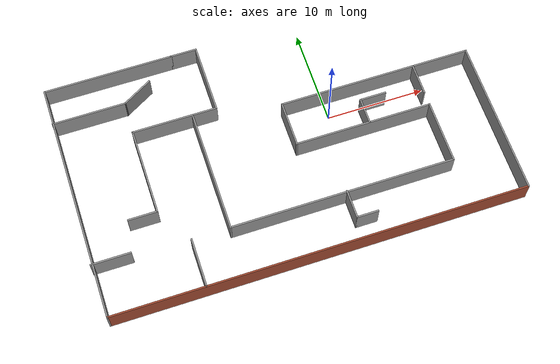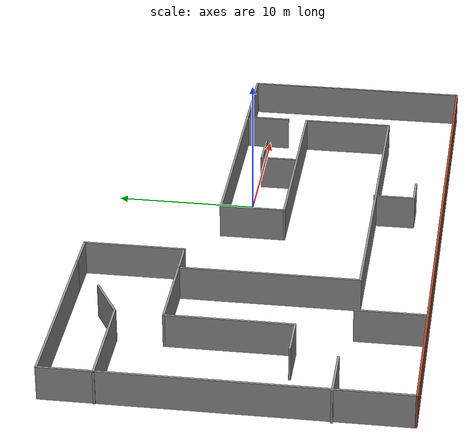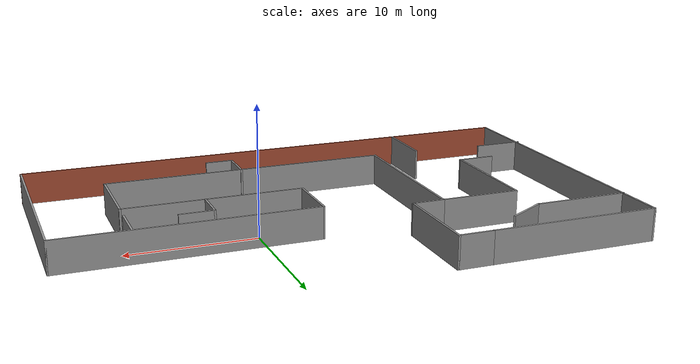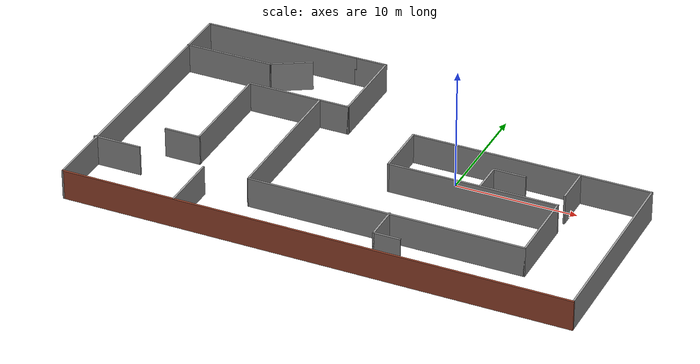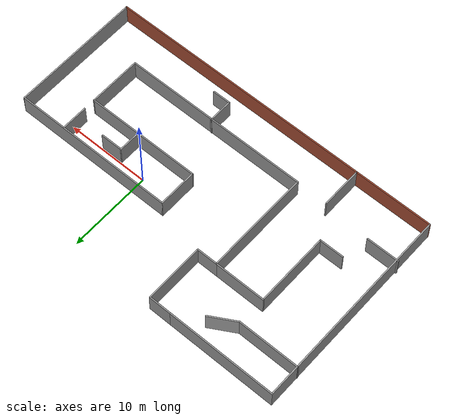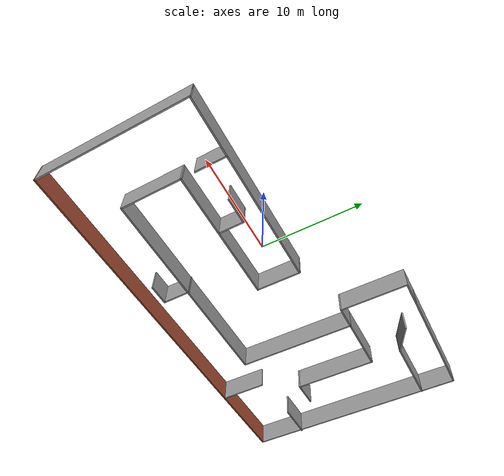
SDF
<?xml version='1.0'?>
<sdf version='1.6'>
  <model name='simple_world'>
    <pose frame=''>-5.64816 -1.81434 0 0 -0 0</pose>
    <link name='Wall_10'>
      <collision name='Wall_10_Collision'>
        <geometry>
          <box>
            <size>41.75 0.15 2.5</size>
          </box>
        </geometry>
        <pose frame=''>0 0 1.25 0 -0 0</pose>
      </collision>
      <visual name='Wall_10_Visual'>
        <pose frame=''>0 0 1.25 0 -0 0</pose>
        <geometry>
          <box>
            <size>41.75 0.15 2.5</size>
          </box>
        </geometry>
        <material>
          <script>
            <uri>file://media/materials/scripts/gazebo.material</uri>
            <name>Gazebo/Bricks</name>
          </script>
          <ambient>1 1 1 1</ambient>
        </material>
        <meta>
          <layer>0</layer>
        </meta>
      </visual>
      <pose frame=''>0.0862 -12.3 0 0 -0 3.14159</pose>
    </link>
    <link name='Wall_11'>
      <collision name='Wall_11_Collision'>
        <geometry>
          <box>
            <size>24.75 0.15 2.5</size>
          </box>
        </geometry>
        <pose frame=''>0 0 1.25 0 -0 0</pose>
      </collision>
      <visual name='Wall_11_Visual'>
        <pose frame=''>0 0 1.25 0 -0 0</pose>
        <geometry>
          <box>
            <size>24.75 0.15 2.5</size>
          </box>
        </geometry>
        <material>
          <script>
            <uri>file://media/materials/scripts/gazebo.material</uri>
            <name>Gazebo/Grey</name>
          </script>
          <ambient>1 1 1 1</ambient>
        </material>
        <meta>
          <layer>0</layer>
        </meta>
      </visual>
      <pose frame=''>-20.7138 -0 0 0 -0 1.5708</pose>
    </link>
    <link name='Wall_12'>
      <collision name='Wall_12_Collision'>
        <geometry>
          <box>
            <size>13.25 0.15 2.5</size>
          </box>
        </geometry>
        <pose frame=''>0 0 1.25 0 -0 0</pose>
      </collision>
      <visual name='Wall_12_Visual'>
        <pose frame=''>0 0 1.25 0 -0 0</pose>
        <geometry>
          <box>
            <size>13.25 0.15 2.5</size>
          </box>
        </geometry>
        <material>
          <script>
            <uri>file://media/materials/scripts/gazebo.material</uri>
            <name>Gazebo/Grey</name>
          </script>
          <ambient>1 1 1 1</ambient>
        </material>
        <meta>
          <layer>0</layer>
        </meta>
      </visual>
      <pose frame=''>-14.1638 12.3 0 0 -0 0</pose>
    </link>
    <link name='Wall_13'>
      <collision name='Wall_13_Collision'>
        <geometry>
          <box>
            <size>2.75 0.15 2.5</size>
          </box>
        </geometry>
        <pose frame=''>0 0 1.25 0 -0 0</pose>
      </collision>
      <visual name='Wall_13_Visual'>
        <pose frame=''>0 0 1.25 0 -0 0</pose>
        <geometry>
          <box>
            <size>2.75 0.15 2.5</size>
          </box>
        </geometry>
        <material>
          <script>
            <uri>file://media/materials/scripts/gazebo.material</uri>
            <name>Gazebo/Grey</name>
          </script>
          <ambient>1 1 1 1</ambient>
        </material>
        <meta>
          <layer>0</layer>
        </meta>
      </visual>
      <pose frame=''>-6.3138 12.3 0 0 -0 0</pose>
    </link>
    <link name='Wall_14'>
      <collision name='Wall_14_Collision'>
        <geometry>
          <box>
            <size>7.25 0.15 2.5</size>
          </box>
        </geometry>
        <pose frame=''>0 0 1.25 0 -0 0</pose>
      </collision>
      <visual name='Wall_14_Visual'>
        <pose frame=''>0 0 1.25 0 -0 0</pose>
        <geometry>
          <box>
            <size>7.25 0.15 2.5</size>
          </box>
        </geometry>
        <material>
          <script>
            <uri>file://media/materials/scripts/gazebo.material</uri>
            <name>Gazebo/Grey</name>
          </script>
          <ambient>1 1 1 1</ambient>
        </material>
        <meta>
          <layer>0</layer>
        </meta>
      </visual>
      <pose frame=''>-5.0138 8.75 0 0 -0 -1.5708</pose>
    </link>
    <link name='Wall_15'>
      <collision name='Wall_15_Collision'>
        <geometry>
          <box>
            <size>2.6 0.15 2.5</size>
          </box>
        </geometry>
        <pose frame=''>0 0 1.25 0 -0 0</pose>
      </collision>
      <visual name='Wall_15_Visual'>
        <pose frame=''>0 0 1.25 0 -0 0</pose>
        <geometry>
          <box>
            <size>2.6 0.15 2.5</size>
          </box>
        </geometry>
        <material>
          <script>
            <uri>file://media/materials/scripts/gazebo.material</uri>
            <name>Gazebo/Grey</name>
          </script>
          <ambient>1 1 1 1</ambient>
        </material>
        <meta>
          <layer>0</layer>
        </meta>
      </visual>
      <pose frame=''>-6.2388 5.2 0 0 -0 3.14159</pose>
    </link>
    <link name='Wall_18'>
      <collision name='Wall_18_Collision'>
        <geometry>
          <box>
            <size>2.75 0.15 2.5</size>
          </box>
        </geometry>
        <pose frame=''>0 0 1.25 0 -0 0</pose>
      </collision>
      <visual name='Wall_18_Visual'>
        <pose frame=''>0 0 1.25 0 -0 0</pose>
        <geometry>
          <box>
            <size>2.75 0.15 2.5</size>
          </box>
        </geometry>
        <material>
          <script>
            <uri>file://media/materials/scripts/gazebo.material</uri>
            <name>Gazebo/Grey</name>
          </script>
          <ambient>1 1 1 1</ambient>
        </material>
        <meta>
          <layer>0</layer>
        </meta>
      </visual>
      <pose frame=''>8.8363 0.274203 0 0 -0 1.5708</pose>
    </link>
    <link name='Wall_19'>
      <collision name='Wall_19_Collision'>
        <geometry>
          <box>
            <size>2.75 0.15 2.5</size>
          </box>
        </geometry>
        <pose frame=''>0 0 1.25 0 -0 0</pose>
      </collision>
      <visual name='Wall_19_Visual'>
        <pose frame=''>0 0 1.25 0 -0 0</pose>
        <geometry>
          <box>
            <size>2.75 0.15 2.5</size>
          </box>
        </geometry>
        <material>
          <script>
            <uri>file://media/materials/scripts/gazebo.material</uri>
            <name>Gazebo/Grey</name>
          </script>
          <ambient>1 1 1 1</ambient>
        </material>
        <meta>
          <layer>0</layer>
        </meta>
      </visual>
      <pose frame=''>10.1363 1.5742 0 0 -0 0</pose>
    </link>
    <link name='Wall_21'>
      <collision name='Wall_21_Collision'>
        <geometry>
          <box>
            <size>3.25 0.15 2.5</size>
          </box>
        </geometry>
        <pose frame=''>0 0 1.25 0 -0 0</pose>
      </collision>
      <visual name='Wall_21_Visual'>
        <pose frame=''>0 0 1.25 0 -0 0</pose>
        <geometry>
          <box>
            <size>3.25 0.15 2.5</size>
          </box>
        </geometry>
        <material>
          <script>
            <uri>file://media/materials/scripts/gazebo.material</uri>
            <name>Gazebo/Grey</name>
          </script>
          <ambient>1 1 1 1</ambient>
        </material>
        <meta>
          <layer>0</layer>
        </meta>
      </visual>
      <pose frame=''>15.1479 1.95641 0 0 -0 -1.5708</pose>
    </link>
    <link name='Wall_23'>
      <collision name='Wall_23_Collision'>
        <geometry>
          <box>
            <size>6.25 0.15 2.5</size>
          </box>
        </geometry>
        <pose frame=''>0 0 1.25 0 -0 0</pose>
      </collision>
      <visual name='Wall_23_Visual'>
        <pose frame=''>0 0 1.25 0 -0 0</pose>
        <geometry>
          <box>
            <size>6.25 0.15 2.5</size>
          </box>
        </geometry>
        <material>
          <script>
            <uri>file://media/materials/scripts/gazebo.material</uri>
            <name>Gazebo/Grey</name>
          </script>
          <ambient>1 1 1 1</ambient>
        </material>
        <meta>
          <layer>0</layer>
        </meta>
      </visual>
      <pose frame=''>-10.5138 5.2 0 0 -0 3.14159</pose>
    </link>
    <link name='Wall_24'>
      <collision name='Wall_24_Collision'>
        <geometry>
          <box>
            <size>9 0.15 2.5</size>
          </box>
        </geometry>
        <pose frame=''>0 0 1.25 0 -0 0</pose>
      </collision>
      <visual name='Wall_24_Visual'>
        <pose frame=''>0 0 1.25 0 -0 0</pose>
        <geometry>
          <box>
            <size>9 0.15 2.5</size>
          </box>
        </geometry>
        <material>
          <script>
            <uri>file://media/materials/scripts/gazebo.material</uri>
            <name>Gazebo/Grey</name>
          </script>
          <ambient>1 1 1 1</ambient>
        </material>
        <meta>
          <layer>0</layer>
        </meta>
      </visual>
      <pose frame=''>-13.5638 0.775 0 0 -0 -1.5708</pose>
    </link>
    <link name='Wall_25'>
      <collision name='Wall_25_Collision'>
        <geometry>
          <box>
            <size>3 0.15 2.5</size>
          </box>
        </geometry>
        <pose frame=''>0 0 1.25 0 -0 0</pose>
      </collision>
      <visual name='Wall_25_Visual'>
        <pose frame=''>0 0 1.25 0 -0 0</pose>
        <geometry>
          <box>
            <size>3 0.15 2.5</size>
          </box>
        </geometry>
        <material>
          <script>
            <uri>file://media/materials/scripts/gazebo.material</uri>
            <name>Gazebo/Grey</name>
          </script>
          <ambient>1 1 1 1</ambient>
        </material>
        <meta>
          <layer>0</layer>
        </meta>
      </visual>
      <pose frame=''>-14.9888 -3.65 0 0 -0 3.14159</pose>
    </link>
    <link name='Wall_27'>
      <collision name='Wall_27_Collision'>
        <geometry>
          <box>
            <size>3 0.15 2.5</size>
          </box>
        </geometry>
        <pose frame=''>0 0 1.25 0 -0 0</pose>
      </collision>
      <visual name='Wall_27_Visual'>
        <pose frame=''>0 0 1.25 0 -0 0</pose>
        <geometry>
          <box>
            <size>3 0.15 2.5</size>
          </box>
        </geometry>
        <material>
          <script>
            <uri>file://media/materials/scripts/gazebo.material</uri>
            <name>Gazebo/Grey</name>
          </script>
          <ambient>1 1 1 1</ambient>
        </material>
        <meta>
          <layer>0</layer>
        </meta>
      </visual>
      <pose frame=''>4.21717 -8.7552 0 0 -0 -1.5708</pose>
    </link>
    <link name='Wall_28'>
      <collision name='Wall_28_Collision'>
        <geometry>
          <box>
            <size>2.25 0.15 2.5</size>
          </box>
        </geometry>
        <pose frame=''>0 0 1.25 0 -0 0</pose>
      </collision>
      <visual name='Wall_28_Visual'>
        <pose frame=''>0 0 1.25 0 -0 0</pose>
        <geometry>
          <box>
            <size>2.25 0.15 2.5</size>
          </box>
        </geometry>
        <material>
          <script>
            <uri>file://media/materials/scripts/gazebo.material</uri>
            <name>Gazebo/Grey</name>
          </script>
          <ambient>1 1 1 1</ambient>
        </material>
        <meta>
          <layer>0</layer>
        </meta>
      </visual>
      <pose frame=''>5.26717 -10.1802 0 0 -0 0</pose>
    </link>
    <link name='Wall_3'>
      <collision name='Wall_3_Collision'>
        <geometry>
          <box>
            <size>12.75 0.15 2.5</size>
          </box>
        </geometry>
        <pose frame=''>0 0 1.25 0 -0 0</pose>
      </collision>
      <visual name='Wall_3_Visual'>
        <pose frame=''>0 0 1.25 0 -0 0</pose>
        <geometry>
          <box>
            <size>12.75 0.15 2.5</size>
          </box>
        </geometry>
        <material>
          <script>
            <uri>file://media/materials/scripts/gazebo.material</uri>
            <name>Gazebo/Grey</name>
          </script>
          <ambient>1 1 1 1</ambient>
        </material>
        <meta>
          <layer>0</layer>
        </meta>
      </visual>
      <pose frame=''>-7.4638 -1.1 0 0 -0 -1.5708</pose>
    </link>
    <link name='Wall_30'>
      <collision name='Wall_30_Collision'>
        <geometry>
          <box>
            <size>5 0.15 2.5</size>
          </box>
        </geometry>
        <pose frame=''>0 0 1.25 0 -0 0</pose>
      </collision>
      <visual name='Wall_30_Visual'>
        <pose frame=''>0 0 1.25 0 -0 0</pose>
        <geometry>
          <box>
            <size>5 0.15 2.5</size>
          </box>
        </geometry>
        <material>
          <script>
            <uri>file://media/materials/scripts/gazebo.material</uri>
            <name>Gazebo/Grey</name>
          </script>
          <ambient>1 1 1 1</ambient>
        </material>
        <meta>
          <layer>0</layer>
        </meta>
      </visual>
      <pose frame=''>-11.2879 -9.82742 0 0 -0 1.5708</pose>
    </link>
    <link name='Wall_32'>
      <collision name='Wall_32_Collision'>
        <geometry>
          <box>
            <size>4 0.15 2.5</size>
          </box>
        </geometry>
        <pose frame=''>0 0 1.25 0 -0 0</pose>
      </collision>
      <visual name='Wall_32_Visual'>
        <pose frame=''>0 0 1.25 0 -0 0</pose>
        <geometry>
          <box>
            <size>4 0.15 2.5</size>
          </box>
        </geometry>
        <material>
          <script>
            <uri>file://media/materials/scripts/gazebo.material</uri>
            <name>Gazebo/Grey</name>
          </script>
          <ambient>1 1 1 1</ambient>
        </material>
        <meta>
          <layer>0</layer>
        </meta>
      </visual>
      <pose frame=''>-18.9612 -6.8995 0 0 -0 0</pose>
    </link>
    <link name='Wall_34'>
      <collision name='Wall_34_Collision'>
        <geometry>
          <box>
            <size>7.5 0.15 2.5</size>
          </box>
        </geometry>
        <pose frame=''>0 0 1.25 0 -0 0</pose>
      </collision>
      <visual name='Wall_34_Visual'>
        <pose frame=''>0 0 1.25 0 -0 0</pose>
        <geometry>
          <box>
            <size>7.5 0.15 2.5</size>
          </box>
        </geometry>
        <material>
          <script>
            <uri>file://media/materials/scripts/gazebo.material</uri>
            <name>Gazebo/Grey</name>
          </script>
          <ambient>1 1 1 1</ambient>
        </material>
        <meta>
          <layer>0</layer>
        </meta>
      </visual>
      <pose frame=''>-17.0881 8.544 0 0 -0 0</pose>
    </link>
    <link name='Wall_35'>
      <collision name='Wall_35_Collision'>
        <geometry>
          <box>
            <size>3.5 0.15 2.5</size>
          </box>
        </geometry>
        <pose frame=''>0 0 1.25 0 -0 0</pose>
      </collision>
      <visual name='Wall_35_Visual'>
        <pose frame=''>0 0 1.25 0 -0 0</pose>
        <geometry>
          <box>
            <size>3.5 0.15 2.5</size>
          </box>
        </geometry>
        <material>
          <script>
            <uri>file://media/materials/scripts/gazebo.material</uri>
            <name>Gazebo/Grey</name>
          </script>
          <ambient>1 1 1 1</ambient>
        </material>
        <meta>
          <layer>0</layer>
        </meta>
      </visual>
      <pose frame=''>-11.9626 9.3815 0 0 -0 0.523599</pose>
    </link>
    <link name='Wall_4'>
      <collision name='Wall_4_Collision'>
        <geometry>
          <box>
            <size>22.75 0.15 2.5</size>
          </box>
        </geometry>
        <pose frame=''>0 0 1.25 0 -0 0</pose>
      </collision>
      <visual name='Wall_4_Visual'>
        <pose frame=''>0 0 1.25 0 -0 0</pose>
        <geometry>
          <box>
            <size>22.75 0.15 2.5</size>
          </box>
        </geometry>
        <material>
          <script>
            <uri>file://media/materials/scripts/gazebo.material</uri>
            <name>Gazebo/Grey</name>
          </script>
          <ambient>1 1 1 1</ambient>
        </material>
        <meta>
          <layer>0</layer>
        </meta>
      </visual>
      <pose frame=''>3.8362 -7.4 0 0 -0 0</pose>
    </link>
    <link name='Wall_5'>
      <collision name='Wall_5_Collision'>
        <geometry>
          <box>
            <size>6.5 0.15 2.5</size>
          </box>
        </geometry>
        <pose frame=''>0 0 1.25 0 -0 0</pose>
      </collision>
      <visual name='Wall_5_Visual'>
        <pose frame=''>0 0 1.25 0 -0 0</pose>
        <geometry>
          <box>
            <size>6.5 0.15 2.5</size>
          </box>
        </geometry>
        <material>
          <script>
            <uri>file://media/materials/scripts/gazebo.material</uri>
            <name>Gazebo/Grey</name>
          </script>
          <ambient>1 1 1 1</ambient>
        </material>
        <meta>
          <layer>0</layer>
        </meta>
      </visual>
      <pose frame=''>15.1362 -4.225 0 0 -0 1.5708</pose>
    </link>
    <link name='Wall_6'>
      <collision name='Wall_6_Collision'>
        <geometry>
          <box>
            <size>14 0.15 2.5</size>
          </box>
        </geometry>
        <pose frame=''>0 0 1.25 0 -0 0</pose>
      </collision>
      <visual name='Wall_6_Visual'>
        <pose frame=''>0 0 1.25 0 -0 0</pose>
        <geometry>
          <box>
            <size>14 0.15 2.5</size>
          </box>
        </geometry>
        <material>
          <script>
            <uri>file://media/materials/scripts/gazebo.material</uri>
            <name>Gazebo/Grey</name>
          </script>
          <ambient>1 1 1 1</ambient>
        </material>
        <meta>
          <layer>0</layer>
        </meta>
      </visual>
      <pose frame=''>8.2112 -1.05 0 0 -0 3.14159</pose>
    </link>
    <link name='Wall_7'>
      <collision name='Wall_7_Collision'>
        <geometry>
          <box>
            <size>4.75 0.15 2.5</size>
          </box>
        </geometry>
        <pose frame=''>0 0 1.25 0 -0 0</pose>
      </collision>
      <visual name='Wall_7_Visual'>
        <pose frame=''>0 0 1.25 0 -0 0</pose>
        <geometry>
          <box>
            <size>4.75 0.15 2.5</size>
          </box>
        </geometry>
        <material>
          <script>
            <uri>file://media/materials/scripts/gazebo.material</uri>
            <name>Gazebo/Grey</name>
          </script>
          <ambient>1 1 1 1</ambient>
        </material>
        <meta>
          <layer>0</layer>
        </meta>
      </visual>
      <pose frame=''>1.2862 1.25 0 0 -0 1.5708</pose>
    </link>
    <link name='Wall_8'>
      <collision name='Wall_8_Collision'>
        <geometry>
          <box>
            <size>19.75 0.15 2.5</size>
          </box>
        </geometry>
        <pose frame=''>0 0 1.25 0 -0 0</pose>
      </collision>
      <visual name='Wall_8_Visual'>
        <pose frame=''>0 0 1.25 0 -0 0</pose>
        <geometry>
          <box>
            <size>19.75 0.15 2.5</size>
          </box>
        </geometry>
        <material>
          <script>
            <uri>file://media/materials/scripts/gazebo.material</uri>
            <name>Gazebo/Grey</name>
          </script>
          <ambient>1 1 1 1</ambient>
        </material>
        <meta>
          <layer>0</layer>
        </meta>
      </visual>
      <pose frame=''>11.0862 3.55 0 0 -0 0</pose>
    </link>
    <link name='Wall_9'>
      <collision name='Wall_9_Collision'>
        <geometry>
          <box>
            <size>16 0.15 2.5</size>
          </box>
        </geometry>
        <pose frame=''>0 0 1.25 0 -0 0</pose>
      </collision>
      <visual name='Wall_9_Visual'>
        <pose frame=''>0 0 1.25 0 -0 0</pose>
        <geometry>
          <box>
            <size>16 0.15 2.5</size>
          </box>
        </geometry>
        <material>
          <script>
            <uri>file://media/materials/scripts/gazebo.material</uri>
            <name>Gazebo/Grey</name>
          </script>
          <ambient>1 1 1 1</ambient>
        </material>
        <meta>
          <layer>0</layer>
        </meta>
      </visual>
      <pose frame=''>20.8862 -4.375 0 0 -0 -1.5708</pose>
    </link>
    <static>1</static>
  </model>
</sdf>
